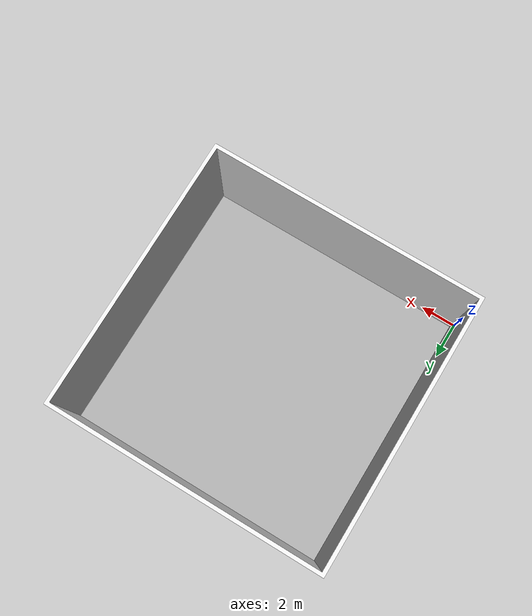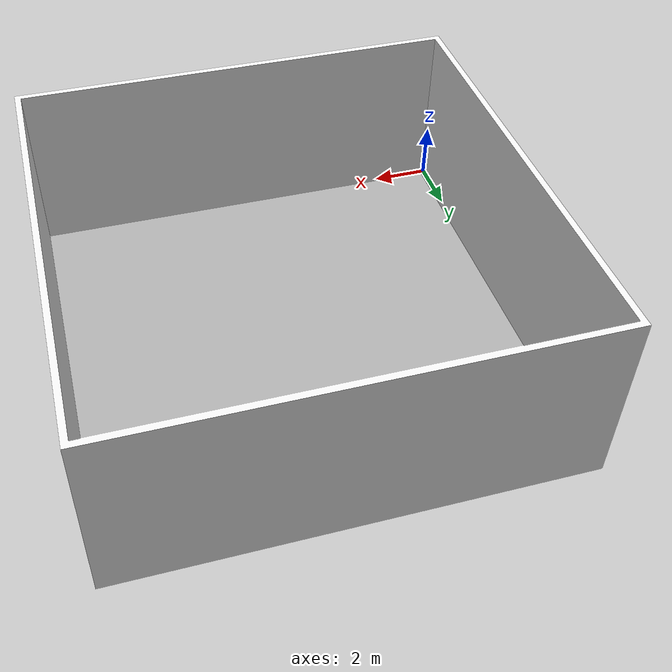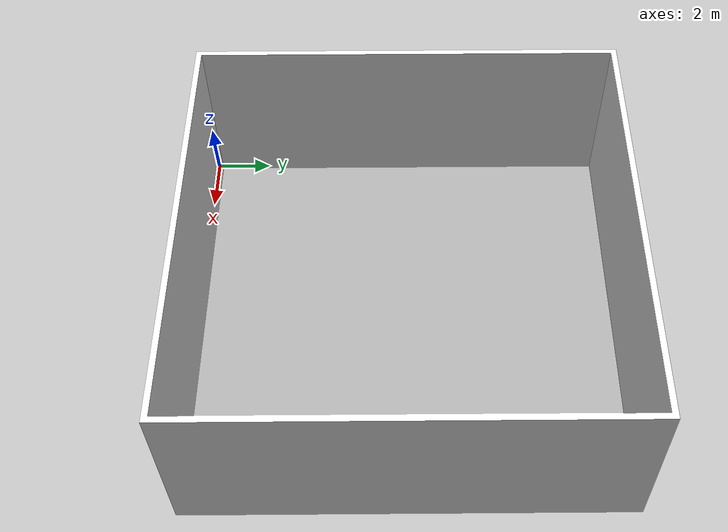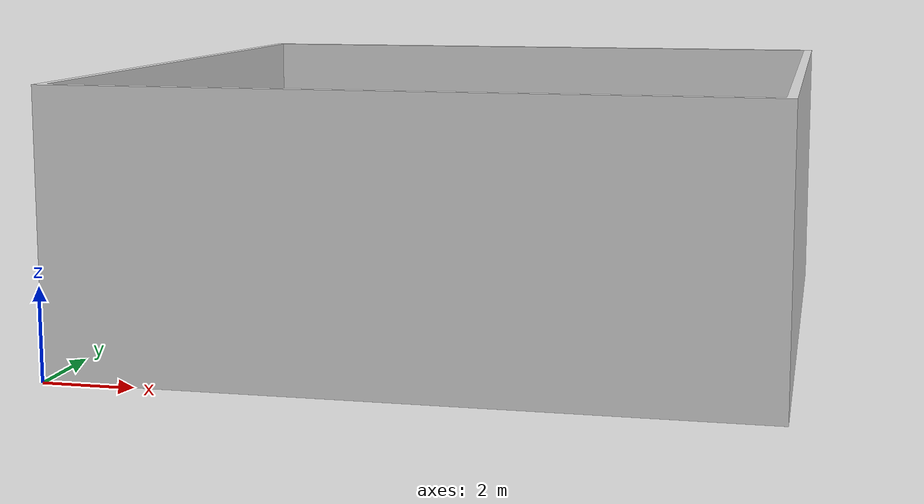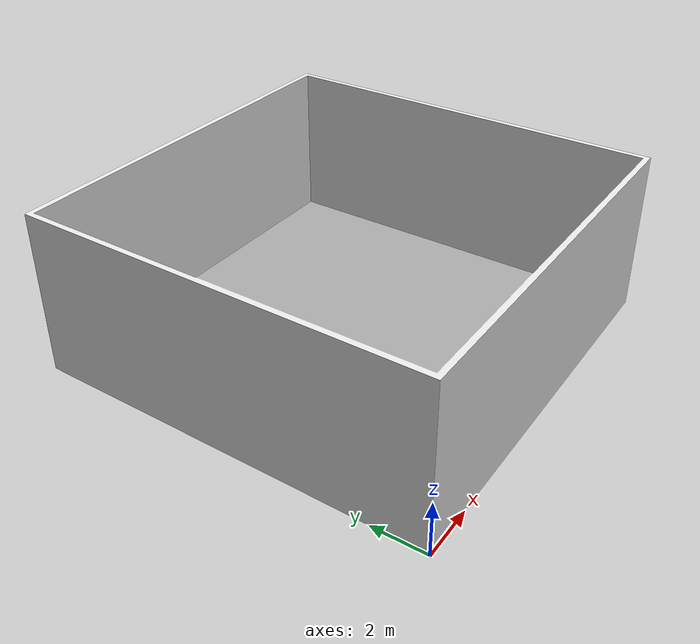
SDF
<?xml version="1.0" ?>
<sdf version="1.5">
  <model name="restuarant">
    <static>true</static>
    <link name="restuarant_link">
      <collision name="collision">
        <geometry>
          <box>
            <size>1 1 1 </size>
          </box>
        </geometry>
      </collision>
      <visual name="restuarant_mesh">
      <cast_shadows>true</cast_shadows>
        <geometry>
          <mesh>
            <uri>model://restuarant/meshes/restuarant.dae</uri>
          </mesh>
        </geometry>
      </visual>
    </link>
  </model>
</sdf>
